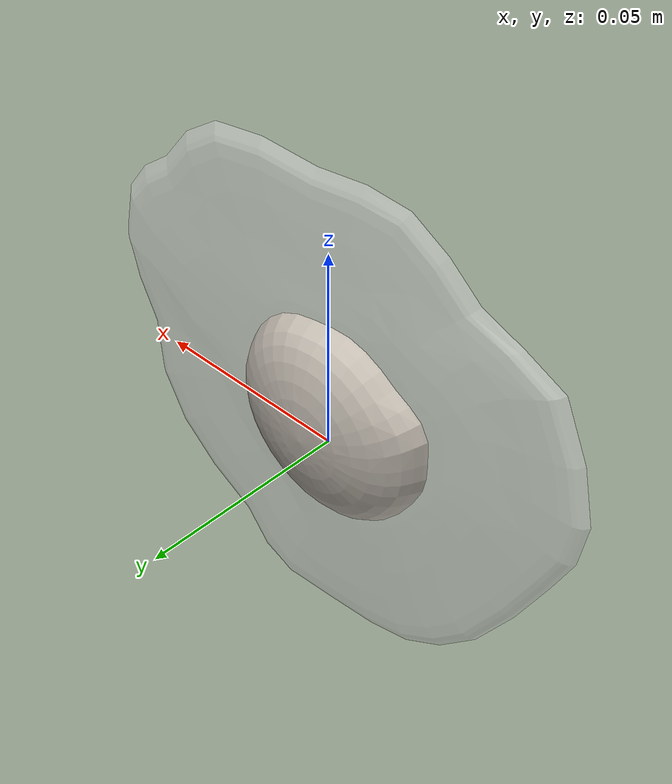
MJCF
<mujoco model="Egg_Cracked_26">
  <compiler autolimits="true" boundmass="0.01" angle="radian"/>
  <default>
    <default class="/">
      <default class="__VISUAL_MJT__">
        <geom contype="0" conaffinity="0" group="0"/>
      </default>
      <default class="__STRUCTURAL_MJT__">
        <geom contype="8" conaffinity="15" group="4" friction="0.90000000000000002 0.90000000000000002 0.001" solref="0.025000000000000001 1" solimp="0.998 0.998 0.001"/>
      </default>
      <default class="__DYNAMIC_MJT__">
        <geom contype="1" conaffinity="15" group="4" friction="0.90000000000000002 0.90000000000000002 0.001" solref="0.025000000000000001 1" solimp="0.998 0.998 0.001"/>
      </default>
    </default>
  </default>
  <asset>
    <texture name="Fried_Egg_White_Uncooked_Mat" type="2d" file="Fried_Egg_AlbedoTransparency.png"/>
    <material name="material_Fried_Egg_White_Uncooked_Mat" class="/" texture="Fried_Egg_White_Uncooked_Mat" specular="0.5" shininess="0.5" rgba="1 1 1 0.5"/>
    <texture name="Fried_Egg_Yolk_Mat" type="2d" file="Fried_Egg_AlbedoTransparency.png"/>
    <material name="material_Fried_Egg_Yolk_Mat" class="/" texture="Fried_Egg_Yolk_Mat" specular="0.5" shininess="0.5" rgba="1 1 1 1"/>
    <mesh name="Egg_Cracked_26_fried_egg_25_0" class="/" file="Egg_Cracked_26_fried_egg_25/Egg_Cracked_26_fried_egg_25_0.obj" scale="1 1 1"/>
    <mesh name="Egg_Cracked_26_fried_egg_25_1" class="/" file="Egg_Cracked_26_fried_egg_25/Egg_Cracked_26_fried_egg_25_1.obj" scale="1 1 1"/>
  </asset>
  <worldbody>
    <body name="Egg_Cracked_26">
      <joint name="Egg_Cracked_26_free" class="/" type="free" pos="0 0 0" axis="0 0 1" stiffness="0" range="0 0" armature="0" damping="0.10000000000000001" frictionloss="0"/>
      <body name="Egg_Cracked_26_fried_egg_25" pos="0.0038899999999999998 -0.01023 0.00083000000000000001" quat="1 0 0 0">
        <geom name="Egg_Cracked_26_fried_egg_25_0" class="__VISUAL_MJT__" type="mesh" material="material_Fried_Egg_White_Uncooked_Mat" shellinertia="false" mesh="Egg_Cracked_26_fried_egg_25_0"/>
        <geom name="Egg_Cracked_26_fried_egg_25_1" class="__VISUAL_MJT__" type="mesh" material="material_Fried_Egg_Yolk_Mat" shellinertia="false" mesh="Egg_Cracked_26_fried_egg_25_1"/>
        <geom name="Egg_Cracked_26_PrimitiveCollider_0" class="__DYNAMIC_MJT__" type="box" size="0.070577710866928101 0.010231256484985352 0.062927782535552979" rgba="0 1 0 1" pos="0.0038920342922210693 0.010231256484985352 -0.0008341670036315918" quat="1 0 0 0"/>
      </body>
    </body>
  </worldbody>
</mujoco>
